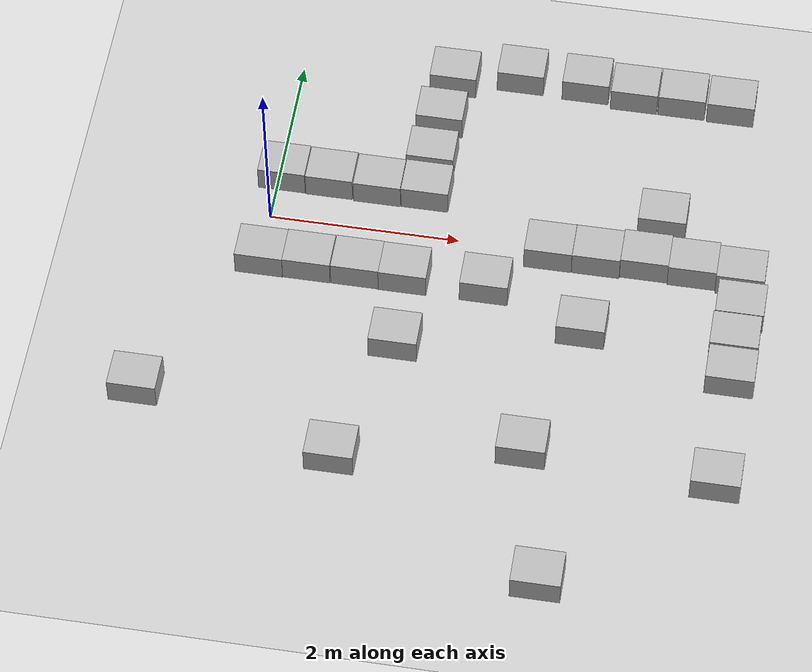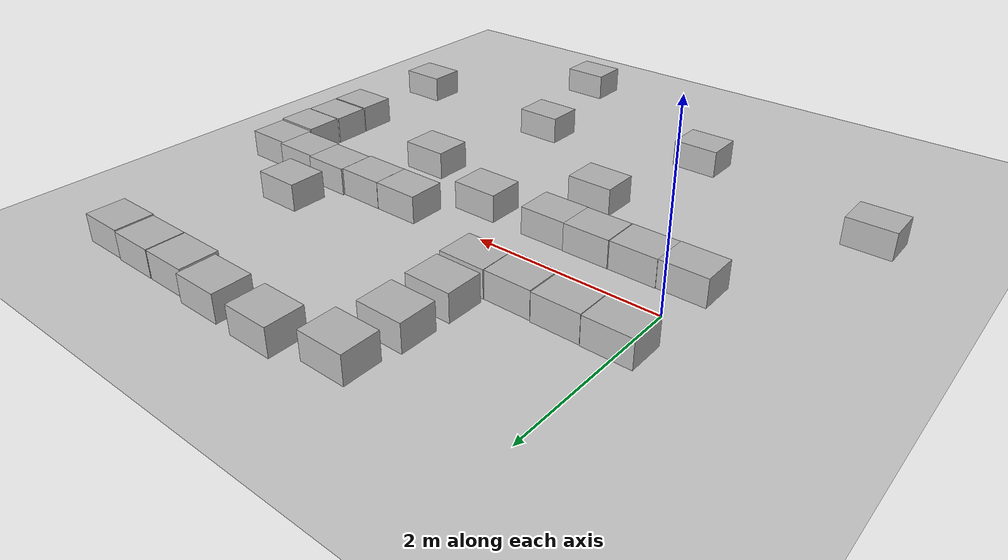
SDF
<sdf version="1.7">
 <world name="default">
  <model name="ground_plane">
   <static>1</static>
   <link name="link">
    <collision name="collision">
     <geometry><plane><normal>0 0 1</normal><size>100 100</size></plane></geometry>
     <surface>
      <contact><collide_bitmask>65535</collide_bitmask></contact>
      <friction><ode><mu>100</mu><mu2>50</mu2></ode></friction>
     </surface>
    </collision>
    <visual name="visual">
     <cast_shadows>0</cast_shadows>
     <geometry><plane><normal>0 0 1</normal><size>100 100</size></plane></geometry>
     <material>
      <script><uri>file://media/materials/scripts/gazebo.material</uri><name>Gazebo/Grey</name></script>
     </material>
    </visual>
   </link>
  </model>
  <model name="cardboard_box_0">
   <pose>0.05213 0.566942 0.149 0 -0 0</pose>
   <link name="link">
    <inertial>
     <mass>2</mass>
     <inertia>
      <ixx>0.0416667</ixx>
      <ixy>0</ixy>
      <ixz>0</ixz>
      <iyy>0.0566667</iyy>
      <iyz>0</iyz>
      <izz>0.0683333</izz>
     </inertia>
    </inertial>
    <collision name="collision">
     <geometry><box><size>0.5 0.4 0.3</size></box></geometry>
     <surface>
      <friction><ode><mu>1</mu><mu2>1</mu2></ode></friction>
      <contact><ode><kp>1e+07</kp><kd>1</kd><min_depth>0.001</min_depth><max_vel>0.1</max_vel></ode></contact>
     </surface>
    </collision>
    <visual name="visual">
     <pose>0 0 -0.15 0 -0 0</pose>
     <geometry>
      <mesh><uri>model://cardboard_box/meshes/cardboard_box.dae</uri><scale>1.25932 1.00745 0.755591</scale></mesh>
     </geometry>
    </visual>
   </link>
  </model>
  <model name="cardboard_box_1">
   <pose>0.559731 0.55986 0.149 0 -0 0</pose>
   <link name="link">
    <inertial>
     <mass>2</mass>
     <inertia>
      <ixx>0.0416667</ixx>
      <ixy>0</ixy>
      <ixz>0</ixz>
      <iyy>0.0566667</iyy>
      <iyz>0</iyz>
      <izz>0.0683333</izz>
     </inertia>
    </inertial>
    <collision name="collision">
     <geometry><box><size>0.5 0.4 0.3</size></box></geometry>
     <surface>
      <friction><ode><mu>1</mu><mu2>1</mu2></ode></friction>
      <contact><ode><kp>1e+07</kp><kd>1</kd><min_depth>0.001</min_depth><max_vel>0.1</max_vel></ode></contact>
     </surface>
    </collision>
    <visual name="visual">
     <pose>0 0 -0.15 0 -0 0</pose>
     <geometry>
      <mesh><uri>model://cardboard_box/meshes/cardboard_box.dae</uri><scale>1.25932 1.00745 0.755591</scale></mesh>
     </geometry>
    </visual>
   </link>
  </model>
  <model name="cardboard_box_2">
   <pose>1.07205 0.548054 0.149 0 -0 0</pose>
   <link name="link">
    <inertial>
     <mass>2</mass>
     <inertia>
      <ixx>0.0416667</ixx>
      <ixy>0</ixy>
      <ixz>0</ixz>
      <iyy>0.0566667</iyy>
      <iyz>0</iyz>
      <izz>0.0683333</izz>
     </inertia>
    </inertial>
    <collision name="collision">
     <geometry><box><size>0.5 0.4 0.3</size></box></geometry>
     <surface>
      <friction><ode><mu>1</mu><mu2>1</mu2></ode></friction>
      <contact><ode><kp>1e+07</kp><kd>1</kd><min_depth>0.001</min_depth><max_vel>0.1</max_vel></ode></contact>
     </surface>
    </collision>
    <visual name="visual">
     <pose>0 0 -0.15 0 -0 0</pose>
     <geometry>
      <mesh><uri>model://cardboard_box/meshes/cardboard_box.dae</uri><scale>1.25932 1.00745 0.755591</scale></mesh>
     </geometry>
    </visual>
   </link>
  </model>
  <model name="cardboard_box_3">
   <pose>1.57729 0.552778 0.149 0 -0 0</pose>
   <link name="link">
    <inertial>
     <mass>2</mass>
     <inertia>
      <ixx>0.0416667</ixx>
      <ixy>0</ixy>
      <ixz>0</ixz>
      <iyy>0.0566667</iyy>
      <iyz>0</iyz>
      <izz>0.0683333</izz>
     </inertia>
    </inertial>
    <collision name="collision">
     <geometry><box><size>0.5 0.4 0.3</size></box></geometry>
     <surface>
      <friction><ode><mu>1</mu><mu2>1</mu2></ode></friction>
      <contact><ode><kp>1e+07</kp><kd>1</kd><min_depth>0.001</min_depth><max_vel>0.1</max_vel></ode></contact>
     </surface>
    </collision>
    <visual name="visual">
     <pose>0 0 -0.15 0 -0 0</pose>
     <geometry>
      <mesh><uri>model://cardboard_box/meshes/cardboard_box.dae</uri><scale>1.25932 1.00745 0.755591</scale></mesh>
     </geometry>
    </visual>
   </link>
  </model>
  <model name="cardboard_box">
   <pose>0.01504 -0.545046 0.149 0 -0 0</pose>
   <link name="link">
    <inertial>
     <mass>2</mass>
     <inertia>
      <ixx>0.0416667</ixx>
      <ixy>0</ixy>
      <ixz>0</ixz>
      <iyy>0.0566667</iyy>
      <iyz>0</iyz>
      <izz>0.0683333</izz>
     </inertia>
    </inertial>
    <collision name="collision">
     <geometry><box><size>0.5 0.4 0.3</size></box></geometry>
     <surface>
      <friction><ode><mu>1</mu><mu2>1</mu2></ode></friction>
      <contact><ode><kp>1e+07</kp><kd>1</kd><min_depth>0.001</min_depth><max_vel>0.1</max_vel></ode></contact>
     </surface>
    </collision>
    <visual name="visual">
     <pose>0 0 -0.15 0 -0 0</pose>
     <geometry>
      <mesh><uri>model://cardboard_box/meshes/cardboard_box.dae</uri><scale>1.25932 1.00745 0.755591</scale></mesh>
     </geometry>
    </visual>
   </link>
  </model>
  <model name="cardboard_box_4">
   <pose>0.514237 -0.540327 0.149 0 -0 1e-06</pose>
   <link name="link">
    <inertial>
     <mass>2</mass>
     <inertia>
      <ixx>0.0416667</ixx>
      <ixy>0</ixy>
      <ixz>0</ixz>
      <iyy>0.0566667</iyy>
      <iyz>0</iyz>
      <izz>0.0683333</izz>
     </inertia>
    </inertial>
    <collision name="collision">
     <geometry><box><size>0.5 0.4 0.3</size></box></geometry>
     <surface>
      <friction><ode><mu>1</mu><mu2>1</mu2></ode></friction>
      <contact><ode><kp>1e+07</kp><kd>1</kd><min_depth>0.001</min_depth><max_vel>0.1</max_vel></ode></contact>
     </surface>
    </collision>
    <visual name="visual">
     <pose>0 0 -0.15 0 -0 0</pose>
     <geometry>
      <mesh><uri>model://cardboard_box/meshes/cardboard_box.dae</uri><scale>1.25932 1.00745 0.755591</scale></mesh>
     </geometry>
    </visual>
   </link>
  </model>
  <model name="cardboard_box_5">
   <pose>1.022 -0.537967 0.149 0 -0 0</pose>
   <link name="link">
    <inertial>
     <mass>2</mass>
     <inertia>
      <ixx>0.0416667</ixx>
      <ixy>0</ixy>
      <ixz>0</ixz>
      <iyy>0.0566667</iyy>
      <iyz>0</iyz>
      <izz>0.0683333</izz>
     </inertia>
    </inertial>
    <collision name="collision">
     <geometry><box><size>0.5 0.4 0.3</size></box></geometry>
     <surface>
      <friction><ode><mu>1</mu><mu2>1</mu2></ode></friction>
      <contact><ode><kp>1e+07</kp><kd>1</kd><min_depth>0.001</min_depth><max_vel>0.1</max_vel></ode></contact>
     </surface>
    </collision>
    <visual name="visual">
     <pose>0 0 -0.15 0 -0 0</pose>
     <geometry>
      <mesh><uri>model://cardboard_box/meshes/cardboard_box.dae</uri><scale>1.25932 1.00745 0.755591</scale></mesh>
     </geometry>
    </visual>
   </link>
  </model>
  <model name="cardboard_box_6">
   <pose>1.52113 -0.542686 0.149 -0 -0 -0</pose>
   <link name="link">
    <inertial>
     <mass>2</mass>
     <inertia>
      <ixx>0.0416667</ixx>
      <ixy>0</ixy>
      <ixz>0</ixz>
      <iyy>0.0566667</iyy>
      <iyz>0</iyz>
      <izz>0.0683333</izz>
     </inertia>
    </inertial>
    <collision name="collision">
     <geometry><box><size>0.5 0.4 0.3</size></box></geometry>
     <surface>
      <friction><ode><mu>1</mu><mu2>1</mu2></ode></friction>
      <contact><ode><kp>1e+07</kp><kd>1</kd><min_depth>0.001</min_depth><max_vel>0.1</max_vel></ode></contact>
     </surface>
    </collision>
    <visual name="visual">
     <pose>0 0 -0.15 0 -0 0</pose>
     <geometry>
      <mesh><uri>model://cardboard_box/meshes/cardboard_box.dae</uri><scale>1.25932 1.00745 0.755591</scale></mesh>
     </geometry>
    </visual>
   </link>
  </model>
  <model name="cardboard_box_7">
   <pose>2.96298 -0.016498 0.149 0 -0 0.000486</pose>
   <link name="link">
    <inertial>
     <mass>2</mass>
     <inertia>
      <ixx>0.0416667</ixx>
      <ixy>0</ixy>
      <ixz>0</ixz>
      <iyy>0.0566667</iyy>
      <iyz>0</iyz>
      <izz>0.0683333</izz>
     </inertia>
    </inertial>
    <collision name="collision">
     <geometry><box><size>0.5 0.4 0.3</size></box></geometry>
     <surface>
      <friction><ode><mu>1</mu><mu2>1</mu2></ode></friction>
      <contact><ode><kp>1e+07</kp><kd>1</kd><min_depth>0.001</min_depth><max_vel>0.1</max_vel></ode></contact>
     </surface>
    </collision>
    <visual name="visual">
     <pose>0 0 -0.15 0 -0 0</pose>
     <geometry>
      <mesh><uri>model://cardboard_box/meshes/cardboard_box.dae</uri><scale>1.25932 1.00745 0.755591</scale></mesh>
     </geometry>
    </visual>
   </link>
  </model>
  <model name="cardboard_box_8">
   <pose>2.3682 -0.537967 0.149 0 -0 0</pose>
   <link name="link">
    <inertial>
     <mass>2</mass>
     <inertia>
      <ixx>0.0416667</ixx>
      <ixy>0</ixy>
      <ixz>0</ixz>
      <iyy>0.0566667</iyy>
      <iyz>0</iyz>
      <izz>0.0683333</izz>
     </inertia>
    </inertial>
    <collision name="collision">
     <geometry><box><size>0.5 0.4 0.3</size></box></geometry>
     <surface>
      <friction><ode><mu>1</mu><mu2>1</mu2></ode></friction>
      <contact><ode><kp>1e+07</kp><kd>1</kd><min_depth>0.001</min_depth><max_vel>0.1</max_vel></ode></contact>
     </surface>
    </collision>
    <visual name="visual">
     <pose>0 0 -0.15 0 -0 0</pose>
     <geometry>
      <mesh><uri>model://cardboard_box/meshes/cardboard_box.dae</uri><scale>1.25932 1.00745 0.755591</scale></mesh>
     </geometry>
    </visual>
   </link>
  </model>
  <model name="cardboard_box_9">
   <pose>3.57905 2.19584 0.149 0 -0 0</pose>
   <link name="link">
    <inertial>
     <mass>2</mass>
     <inertia>
      <ixx>0.0416667</ixx>
      <ixy>0</ixy>
      <ixz>0</ixz>
      <iyy>0.0566667</iyy>
      <iyz>0</iyz>
      <izz>0.0683333</izz>
     </inertia>
    </inertial>
    <collision name="collision">
     <geometry><box><size>0.5 0.4 0.3</size></box></geometry>
     <surface>
      <friction><ode><mu>1</mu><mu2>1</mu2></ode></friction>
      <contact><ode><kp>1e+07</kp><kd>1</kd><min_depth>0.001</min_depth><max_vel>0.1</max_vel></ode></contact>
     </surface>
    </collision>
    <visual name="visual">
     <pose>0 0 -0.15 0 -0 0</pose>
     <geometry>
      <mesh><uri>model://cardboard_box/meshes/cardboard_box.dae</uri><scale>1.25932 1.00745 0.755591</scale></mesh>
     </geometry>
    </visual>
   </link>
  </model>
  <model name="cardboard_box_10">
   <pose>1.55989 1.00707 0.149 -0 -0 -0</pose>
   <link name="link">
    <inertial>
     <mass>2</mass>
     <inertia>
      <ixx>0.0416667</ixx>
      <ixy>0</ixy>
      <ixz>0</ixz>
      <iyy>0.0566667</iyy>
      <iyz>0</iyz>
      <izz>0.0683333</izz>
     </inertia>
    </inertial>
    <collision name="collision">
     <geometry><box><size>0.5 0.4 0.3</size></box></geometry>
     <surface>
      <friction><ode><mu>1</mu><mu2>1</mu2></ode></friction>
      <contact><ode><kp>1e+07</kp><kd>1</kd><min_depth>0.001</min_depth><max_vel>0.1</max_vel></ode></contact>
     </surface>
    </collision>
    <visual name="visual">
     <pose>0 0 -0.15 0 -0 0</pose>
     <geometry>
      <mesh><uri>model://cardboard_box/meshes/cardboard_box.dae</uri><scale>1.25932 1.00745 0.755591</scale></mesh>
     </geometry>
    </visual>
   </link>
  </model>
  <model name="cardboard_box_11">
   <pose>1.57274 1.55208 0.149 0 -0 0</pose>
   <link name="link">
    <inertial>
     <mass>2</mass>
     <inertia>
      <ixx>0.0416667</ixx>
      <ixy>0</ixy>
      <ixz>0</ixz>
      <iyy>0.0566667</iyy>
      <iyz>0</iyz>
      <izz>0.0683333</izz>
     </inertia>
    </inertial>
    <collision name="collision">
     <geometry><box><size>0.5 0.4 0.3</size></box></geometry>
     <surface>
      <friction><ode><mu>1</mu><mu2>1</mu2></ode></friction>
      <contact><ode><kp>1e+07</kp><kd>1</kd><min_depth>0.001</min_depth><max_vel>0.1</max_vel></ode></contact>
     </surface>
    </collision>
    <visual name="visual">
     <pose>0 0 -0.15 0 -0 0</pose>
     <geometry>
      <mesh><uri>model://cardboard_box/meshes/cardboard_box.dae</uri><scale>1.25932 1.00745 0.755591</scale></mesh>
     </geometry>
    </visual>
   </link>
  </model>
  <model name="cardboard_box_12">
   <pose>1.63282 2.1143 0.149 -0 -0 -0</pose>
   <link name="link">
    <inertial>
     <mass>2</mass>
     <inertia>
      <ixx>0.0416667</ixx>
      <ixy>0</ixy>
      <ixz>0</ixz>
      <iyy>0.0566667</iyy>
      <iyz>0</iyz>
      <izz>0.0683333</izz>
     </inertia>
    </inertial>
    <collision name="collision">
     <geometry><box><size>0.5 0.4 0.3</size></box></geometry>
     <surface>
      <friction><ode><mu>1</mu><mu2>1</mu2></ode></friction>
      <contact><ode><kp>1e+07</kp><kd>1</kd><min_depth>0.001</min_depth><max_vel>0.1</max_vel></ode></contact>
     </surface>
    </collision>
    <visual name="visual">
     <pose>0 0 -0.15 0 -0 0</pose>
     <geometry>
      <mesh><uri>model://cardboard_box/meshes/cardboard_box.dae</uri><scale>1.25932 1.00745 0.755591</scale></mesh>
     </geometry>
    </visual>
   </link>
  </model>
  <model name="cardboard_box_15">
   <pose>3.46395 -0.014402 0.149 0 -0 0.000438</pose>
   <link name="link">
    <inertial>
     <mass>2</mass>
     <inertia>
      <ixx>0.0416667</ixx>
      <ixy>0</ixy>
      <ixz>0</ixz>
      <iyy>0.0566667</iyy>
      <iyz>0</iyz>
      <izz>0.0683333</izz>
     </inertia>
    </inertial>
    <collision name="collision">
     <geometry><box><size>0.5 0.4 0.3</size></box></geometry>
     <surface>
      <friction><ode><mu>1</mu><mu2>1</mu2></ode></friction>
      <contact><ode><kp>1e+07</kp><kd>1</kd><min_depth>0.001</min_depth><max_vel>0.1</max_vel></ode></contact>
     </surface>
    </collision>
    <visual name="visual">
     <pose>0 0 -0.15 0 -0 0</pose>
     <geometry>
      <mesh><uri>model://cardboard_box/meshes/cardboard_box.dae</uri><scale>1.25932 1.00745 0.755591</scale></mesh>
     </geometry>
    </visual>
   </link>
  </model>
  <model name="cardboard_box_16">
   <pose>3.9642 0.007261 0.149 0 -0 0.000216</pose>
   <link name="link">
    <inertial>
     <mass>2</mass>
     <inertia>
      <ixx>0.0416667</ixx>
      <ixy>0</ixy>
      <ixz>0</ixz>
      <iyy>0.0566667</iyy>
      <iyz>0</iyz>
      <izz>0.0683333</izz>
     </inertia>
    </inertial>
    <collision name="collision">
     <geometry><box><size>0.5 0.4 0.3</size></box></geometry>
     <surface>
      <friction><ode><mu>1</mu><mu2>1</mu2></ode></friction>
      <contact><ode><kp>1e+07</kp><kd>1</kd><min_depth>0.001</min_depth><max_vel>0.1</max_vel></ode></contact>
     </surface>
    </collision>
    <visual name="visual">
     <pose>0 0 -0.15 0 -0 0</pose>
     <geometry>
      <mesh><uri>model://cardboard_box/meshes/cardboard_box.dae</uri><scale>1.25932 1.00745 0.755591</scale></mesh>
     </geometry>
    </visual>
   </link>
  </model>
  <model name="cardboard_box_17">
   <pose>4.09197 2.19587 0.149 -0 -0 -0</pose>
   <link name="link">
    <inertial>
     <mass>2</mass>
     <inertia>
      <ixx>0.0416667</ixx>
      <ixy>0</ixy>
      <ixz>0</ixz>
      <iyy>0.0566667</iyy>
      <iyz>0</iyz>
      <izz>0.0683333</izz>
     </inertia>
    </inertial>
    <collision name="collision">
     <geometry><box><size>0.5 0.4 0.3</size></box></geometry>
     <surface>
      <friction><ode><mu>1</mu><mu2>1</mu2></ode></friction>
      <contact><ode><kp>1e+07</kp><kd>1</kd><min_depth>0.001</min_depth><max_vel>0.1</max_vel></ode></contact>
     </surface>
    </collision>
    <visual name="visual">
     <pose>0 0 -0.15 0 -0 0</pose>
     <geometry>
      <mesh><uri>model://cardboard_box/meshes/cardboard_box.dae</uri><scale>1.25932 1.00745 0.755591</scale></mesh>
     </geometry>
    </visual>
   </link>
  </model>
  <model name="cardboard_box_18">
   <pose>4.61555 2.18299 0.149 -0 -0 -0</pose>
   <link name="link">
    <inertial>
     <mass>2</mass>
     <inertia>
      <ixx>0.0416667</ixx>
      <ixy>0</ixy>
      <ixz>0</ixz>
      <iyy>0.0566667</iyy>
      <iyz>0</iyz>
      <izz>0.0683333</izz>
     </inertia>
    </inertial>
    <collision name="collision">
     <geometry><box><size>0.5 0.4 0.3</size></box></geometry>
     <surface>
      <friction><ode><mu>1</mu><mu2>1</mu2></ode></friction>
      <contact><ode><kp>1e+07</kp><kd>1</kd><min_depth>0.001</min_depth><max_vel>0.1</max_vel></ode></contact>
     </surface>
    </collision>
    <visual name="visual">
     <pose>0 0 -0.15 0 -0 0</pose>
     <geometry>
      <mesh><uri>model://cardboard_box/meshes/cardboard_box.dae</uri><scale>1.25932 1.00745 0.755591</scale></mesh>
     </geometry>
    </visual>
   </link>
  </model>
  <model name="cardboard_box_20">
   <pose>4.46379 -0.009835 0.149 0 -0 0.000595</pose>
   <link name="link">
    <inertial>
     <mass>2</mass>
     <inertia>
      <ixx>0.0416667</ixx>
      <ixy>0</ixy>
      <ixz>0</ixz>
      <iyy>0.0566667</iyy>
      <iyz>0</iyz>
      <izz>0.0683333</izz>
     </inertia>
    </inertial>
    <collision name="collision">
     <geometry><box><size>0.5 0.4 0.3</size></box></geometry>
     <surface>
      <friction><ode><mu>1</mu><mu2>1</mu2></ode></friction>
      <contact><ode><kp>1e+07</kp><kd>1</kd><min_depth>0.001</min_depth><max_vel>0.1</max_vel></ode></contact>
     </surface>
    </collision>
    <visual name="visual">
     <pose>0 0 -0.15 0 -0 0</pose>
     <geometry>
      <mesh><uri>model://cardboard_box/meshes/cardboard_box.dae</uri><scale>1.25932 1.00745 0.755591</scale></mesh>
     </geometry>
    </visual>
   </link>
  </model>
  <model name="cardboard_box_21">
   <pose>4.96392 -0.039643 0.149 0 -0 0.000935</pose>
   <link name="link">
    <inertial>
     <mass>2</mass>
     <inertia>
      <ixx>0.0416667</ixx>
      <ixy>0</ixy>
      <ixz>0</ixz>
      <iyy>0.0566667</iyy>
      <iyz>0</iyz>
      <izz>0.0683333</izz>
     </inertia>
    </inertial>
    <collision name="collision">
     <geometry><box><size>0.5 0.4 0.3</size></box></geometry>
     <surface>
      <friction><ode><mu>1</mu><mu2>1</mu2></ode></friction>
      <contact><ode><kp>1e+07</kp><kd>1</kd><min_depth>0.001</min_depth><max_vel>0.1</max_vel></ode></contact>
     </surface>
    </collision>
    <visual name="visual">
     <pose>0 0 -0.15 0 -0 0</pose>
     <geometry>
      <mesh><uri>model://cardboard_box/meshes/cardboard_box.dae</uri><scale>1.25932 1.00745 0.755591</scale></mesh>
     </geometry>
    </visual>
   </link>
  </model>
  <model name="cardboard_box_43">
   <pose>3.42237 -0.924617 0.149 0 -0 0</pose>
   <link name="link">
    <inertial>
     <mass>2</mass>
     <inertia>
      <ixx>0.0416667</ixx>
      <ixy>0</ixy>
      <ixz>0</ixz>
      <iyy>0.0566667</iyy>
      <iyz>0</iyz>
      <izz>0.0683333</izz>
     </inertia>
    </inertial>
    <collision name="collision">
     <geometry><box><size>0.5 0.4 0.3</size></box></geometry>
     <surface>
      <friction><ode><mu>1</mu><mu2>1</mu2></ode></friction>
      <contact><ode><kp>1e+07</kp><kd>1</kd><min_depth>0.001</min_depth><max_vel>0.1</max_vel></ode></contact>
     </surface>
    </collision>
    <visual name="visual">
     <pose>0 0 -0.15 0 -0 0</pose>
     <geometry>
      <mesh><uri>model://cardboard_box/meshes/cardboard_box.dae</uri><scale>1.25932 1.00745 0.755591</scale></mesh>
     </geometry>
    </visual>
   </link>
  </model>
  <model name="cardboard_box_45">
   <pose>3.03123 -2.46345 0.149 0 -0 0</pose>
   <link name="link">
    <inertial>
     <mass>2</mass>
     <inertia>
      <ixx>0.0416667</ixx>
      <ixy>0</ixy>
      <ixz>0</ixz>
      <iyy>0.0566667</iyy>
      <iyz>0</iyz>
      <izz>0.0683333</izz>
     </inertia>
    </inertial>
    <collision name="collision">
     <geometry><box><size>0.5 0.4 0.3</size></box></geometry>
     <surface>
      <friction><ode><mu>1</mu><mu2>1</mu2></ode></friction>
      <contact><ode><kp>1e+07</kp><kd>1</kd><min_depth>0.001</min_depth><max_vel>0.1</max_vel></ode></contact>
     </surface>
    </collision>
    <visual name="visual">
     <pose>0 0 -0.15 0 -0 0</pose>
     <geometry>
      <mesh><uri>model://cardboard_box/meshes/cardboard_box.dae</uri><scale>1.25932 1.00745 0.755591</scale></mesh>
     </geometry>
    </visual>
   </link>
  </model>
  <model name="cardboard_box_46">
   <pose>1.55654 -1.37345 0.149 0 -0 0</pose>
   <link name="link">
    <inertial>
     <mass>2</mass>
     <inertia>
      <ixx>0.0416667</ixx>
      <ixy>0</ixy>
      <ixz>0</ixz>
      <iyy>0.0566667</iyy>
      <iyz>0</iyz>
      <izz>0.0683333</izz>
     </inertia>
    </inertial>
    <collision name="collision">
     <geometry><box><size>0.5 0.4 0.3</size></box></geometry>
     <surface>
      <friction><ode><mu>1</mu><mu2>1</mu2></ode></friction>
      <contact><ode><kp>1e+07</kp><kd>1</kd><min_depth>0.001</min_depth><max_vel>0.1</max_vel></ode></contact>
     </surface>
    </collision>
    <visual name="visual">
     <pose>0 0 -0.15 0 -0 0</pose>
     <geometry>
      <mesh><uri>model://cardboard_box/meshes/cardboard_box.dae</uri><scale>1.25932 1.00745 0.755591</scale></mesh>
     </geometry>
    </visual>
   </link>
  </model>
  <model name="cardboard_box_47">
   <pose>1.15257 -2.82902 0.149 0 -0 0</pose>
   <link name="link">
    <inertial>
     <mass>2</mass>
     <inertia>
      <ixx>0.0416667</ixx>
      <ixy>0</ixy>
      <ixz>0</ixz>
      <iyy>0.0566667</iyy>
      <iyz>0</iyz>
      <izz>0.0683333</izz>
     </inertia>
    </inertial>
    <collision name="collision">
     <geometry><box><size>0.5 0.4 0.3</size></box></geometry>
     <surface>
      <friction><ode><mu>1</mu><mu2>1</mu2></ode></friction>
      <contact><ode><kp>1e+07</kp><kd>1</kd><min_depth>0.001</min_depth><max_vel>0.1</max_vel></ode></contact>
     </surface>
    </collision>
    <visual name="visual">
     <pose>0 0 -0.15 0 -0 0</pose>
     <geometry>
      <mesh><uri>model://cardboard_box/meshes/cardboard_box.dae</uri><scale>1.25932 1.00745 0.755591</scale></mesh>
     </geometry>
    </visual>
   </link>
  </model>
  <model name="cardboard_box_48">
   <pose>-0.950797 -2.31993 0.149 0 -0 0</pose>
   <link name="link">
    <inertial>
     <mass>2</mass>
     <inertia>
      <ixx>0.0416667</ixx>
      <ixy>0</ixy>
      <ixz>0</ixz>
      <iyy>0.0566667</iyy>
      <iyz>0</iyz>
      <izz>0.0683333</izz>
     </inertia>
    </inertial>
    <collision name="collision">
     <geometry><box><size>0.5 0.4 0.3</size></box></geometry>
     <surface>
      <friction><ode><mu>1</mu><mu2>1</mu2></ode></friction>
      <contact><ode><kp>1e+07</kp><kd>1</kd><min_depth>0.001</min_depth><max_vel>0.1</max_vel></ode></contact>
     </surface>
    </collision>
    <visual name="visual">
     <pose>0 0 -0.15 0 -0 0</pose>
     <geometry>
      <mesh><uri>model://cardboard_box/meshes/cardboard_box.dae</uri><scale>1.25932 1.00745 0.755591</scale></mesh>
     </geometry>
    </visual>
   </link>
  </model>
  <model name="cardboard_box_13">
   <pose>3.04954 2.24424 0.149 0 -0 0</pose>
   <link name="link">
    <inertial>
     <mass>2</mass>
     <inertia>
      <ixx>0.0416667</ixx>
      <ixy>0</ixy>
      <ixz>0</ixz>
      <iyy>0.0566667</iyy>
      <iyz>0</iyz>
      <izz>0.0683333</izz>
     </inertia>
    </inertial>
    <collision name="collision">
     <geometry><box><size>0.5 0.4 0.3</size></box></geometry>
     <surface>
      <friction><ode><mu>1</mu><mu2>1</mu2></ode></friction>
      <contact><ode><kp>1e+07</kp><kd>1</kd><min_depth>0.001</min_depth><max_vel>0.1</max_vel></ode></contact>
     </surface>
    </collision>
    <visual name="visual">
     <pose>0 0 -0.15 0 -0 0</pose>
     <geometry>
      <mesh><uri>model://cardboard_box/meshes/cardboard_box.dae</uri><scale>1.25932 1.00745 0.755591</scale></mesh>
     </geometry>
    </visual>
   </link>
  </model>
  <model name="cardboard_box_14">
   <pose>2.34466 2.25968 0.149 0 -0 0</pose>
   <link name="link">
    <inertial>
     <mass>2</mass>
     <inertia>
      <ixx>0.0416667</ixx>
      <ixy>0</ixy>
      <ixz>0</ixz>
      <iyy>0.0566667</iyy>
      <iyz>0</iyz>
      <izz>0.0683333</izz>
     </inertia>
    </inertial>
    <collision name="collision">
     <geometry><box><size>0.5 0.4 0.3</size></box></geometry>
     <surface>
      <friction><ode><mu>1</mu><mu2>1</mu2></ode></friction>
      <contact><ode><kp>1e+07</kp><kd>1</kd><min_depth>0.001</min_depth><max_vel>0.1</max_vel></ode></contact>
     </surface>
    </collision>
    <visual name="visual">
     <pose>0 0 -0.15 0 -0 0</pose>
     <geometry>
      <mesh><uri>model://cardboard_box/meshes/cardboard_box.dae</uri><scale>1.25932 1.00745 0.755591</scale></mesh>
     </geometry>
    </visual>
   </link>
  </model>
  <model name="cardboard_box_56">
   <pose>4.07702 0.568821 0.149 0 -0 0</pose>
   <link name="link">
    <inertial>
     <mass>2</mass>
     <inertia>
      <ixx>0.0416667</ixx>
      <ixy>0</ixy>
      <ixz>0</ixz>
      <iyy>0.0566667</iyy>
      <iyz>0</iyz>
      <izz>0.0683333</izz>
     </inertia>
    </inertial>
    <collision name="collision">
     <geometry><box><size>0.5 0.4 0.3</size></box></geometry>
     <surface>
      <friction><ode><mu>1</mu><mu2>1</mu2></ode></friction>
      <contact><ode><kp>1e+07</kp><kd>1</kd><min_depth>0.001</min_depth><max_vel>0.1</max_vel></ode></contact>
     </surface>
    </collision>
    <visual name="visual">
     <pose>0 0 -0.15 0 -0 0</pose>
     <geometry>
      <mesh><uri>model://cardboard_box/meshes/cardboard_box.dae</uri><scale>1.25932 1.00745 0.755591</scale></mesh>
     </geometry>
    </visual>
   </link>
  </model>
  <model name="cardboard_box_65">
   <pose>3.3975 -3.96598 0.149 0 -0 0</pose>
   <link name="link">
    <inertial>
     <mass>2</mass>
     <inertia>
      <ixx>0.0416667</ixx>
      <ixy>0</ixy>
      <ixz>0</ixz>
      <iyy>0.0566667</iyy>
      <iyz>0</iyz>
      <izz>0.0683333</izz>
     </inertia>
    </inertial>
    <collision name="collision">
     <geometry><box><size>0.5 0.4 0.3</size></box></geometry>
     <surface>
      <friction><ode><mu>1</mu><mu2>1</mu2></ode></friction>
      <contact><ode><kp>1e+07</kp><kd>1</kd><min_depth>0.001</min_depth><max_vel>0.1</max_vel></ode></contact>
     </surface>
    </collision>
    <visual name="visual">
     <pose>0 0 -0.15 0 -0 0</pose>
     <geometry>
      <mesh><uri>model://cardboard_box/meshes/cardboard_box.dae</uri><scale>1.25932 1.00745 0.755591</scale></mesh>
     </geometry>
    </visual>
   </link>
  </model>
  <model name="cardboard_box_26">
   <pose>5.00012 -0.467207 0.149 0 -0 0</pose>
   <link name="link">
    <inertial>
     <mass>2</mass>
     <inertia>
      <ixx>0.0416667</ixx>
      <ixy>0</ixy>
      <ixz>0</ixz>
      <iyy>0.0566667</iyy>
      <iyz>0</iyz>
      <izz>0.0683333</izz>
     </inertia>
    </inertial>
    <collision name="collision">
     <geometry><box><size>0.5 0.4 0.3</size></box></geometry>
     <surface>
      <friction><ode><mu>1</mu><mu2>1</mu2></ode></friction>
      <contact><ode><kp>1e+07</kp><kd>1</kd><min_depth>0.001</min_depth><max_vel>0.1</max_vel></ode></contact>
     </surface>
    </collision>
    <visual name="visual">
     <pose>0 0 -0.15 0 -0 0</pose>
     <geometry>
      <mesh><uri>model://cardboard_box/meshes/cardboard_box.dae</uri><scale>1.25932 1.00745 0.755591</scale></mesh>
     </geometry>
    </visual>
   </link>
  </model>
  <model name="cardboard_box_40">
   <pose>4.98764 -0.872631 0.149 0 -0 0</pose>
   <link name="link">
    <inertial>
     <mass>2</mass>
     <inertia>
      <ixx>0.0416667</ixx>
      <ixy>0</ixy>
      <ixz>0</ixz>
      <iyy>0.0566667</iyy>
      <iyz>0</iyz>
      <izz>0.0683333</izz>
     </inertia>
    </inertial>
    <collision name="collision">
     <geometry><box><size>0.5 0.4 0.3</size></box></geometry>
     <surface>
      <friction><ode><mu>1</mu><mu2>1</mu2></ode></friction>
      <contact><ode><kp>1e+07</kp><kd>1</kd><min_depth>0.001</min_depth><max_vel>0.1</max_vel></ode></contact>
     </surface>
    </collision>
    <visual name="visual">
     <pose>0 0 -0.15 0 -0 0</pose>
     <geometry>
      <mesh><uri>model://cardboard_box/meshes/cardboard_box.dae</uri><scale>1.25932 1.00745 0.755591</scale></mesh>
     </geometry>
    </visual>
   </link>
  </model>
  <model name="cardboard_box_49">
   <pose>4.99392 -1.29058 0.149 0 -0 0</pose>
   <link name="link">
    <inertial>
     <mass>2</mass>
     <inertia>
      <ixx>0.0416667</ixx>
      <ixy>0</ixy>
      <ixz>0</ixz>
      <iyy>0.0566667</iyy>
      <iyz>0</iyz>
      <izz>0.0683333</izz>
     </inertia>
    </inertial>
    <collision name="collision">
     <geometry><box><size>0.5 0.4 0.3</size></box></geometry>
     <surface>
      <friction><ode><mu>1</mu><mu2>1</mu2></ode></friction>
      <contact><ode><kp>1e+07</kp><kd>1</kd><min_depth>0.001</min_depth><max_vel>0.1</max_vel></ode></contact>
     </surface>
    </collision>
    <visual name="visual">
     <pose>0 0 -0.15 0 -0 0</pose>
     <geometry>
      <mesh><uri>model://cardboard_box/meshes/cardboard_box.dae</uri><scale>1.25932 1.00745 0.755591</scale></mesh>
     </geometry>
    </visual>
   </link>
  </model>
  <model name="cardboard_box_54">
   <pose>4.99392 -2.55681 0.14951 2e-06 -2e-06 -0</pose>
   <link name="link">
    <inertial>
     <mass>2</mass>
     <inertia>
      <ixx>0.0416667</ixx>
      <ixy>0</ixy>
      <ixz>0</ixz>
      <iyy>0.0566667</iyy>
      <iyz>0</iyz>
      <izz>0.0683333</izz>
     </inertia>
    </inertial>
    <collision name="collision">
     <geometry><box><size>0.5 0.4 0.3</size></box></geometry>
     <surface>
      <friction><ode><mu>1</mu><mu2>1</mu2></ode></friction>
      <contact><ode><kp>1e+07</kp><kd>1</kd><min_depth>0.001</min_depth><max_vel>0.1</max_vel></ode></contact>
     </surface>
    </collision>
    <visual name="visual">
     <pose>0 0 -0.15 0 -0 0</pose>
     <geometry>
      <mesh><uri>model://cardboard_box/meshes/cardboard_box.dae</uri><scale>1.25932 1.00745 0.755591</scale></mesh>
     </geometry>
    </visual>
   </link>
  </model>
 </world>
</sdf>
